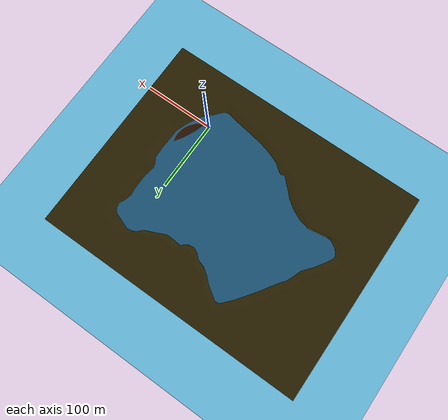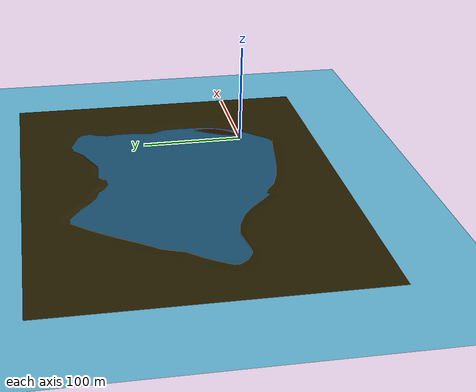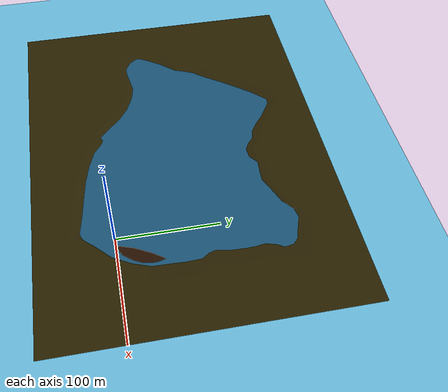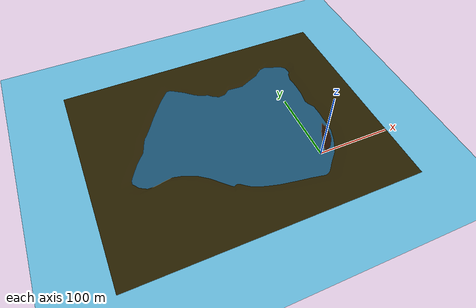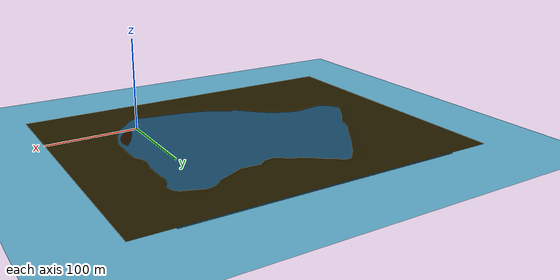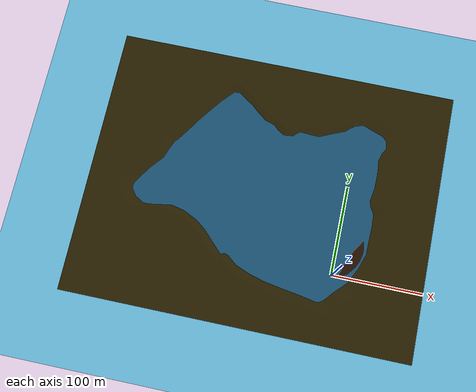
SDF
<sdf version='1.9'>
	<world name='waterworld'>
		<physics name='1ms' type='ode'>
			<max_step_size>0.001</max_step_size>
			<real_time_factor>1</real_time_factor>
			<real_time_update_rate>1000</real_time_update_rate>
		</physics>

		<plugin name='ignition::gazebo::systems::NavSat' filename='ignition-gazebo-navsat-system'/>
		<spherical_coordinates>
			<surface_model>EARTH_WGS84</surface_model>
			<world_frame_orientation>ENU</world_frame_orientation>
			<latitude_deg>46.06661</latitude_deg>,
			<longitude_deg>14.46993</longitude_deg>
			<elevation>0</elevation>
			<heading_deg>0</heading_deg>
		</spherical_coordinates>

		<plugin name='ignition::gazebo::systems::Buoyancy' filename='ignition-gazebo-buoyancy-system'>
			<graded_buoyancy>
				<default_density>1000</default_density>
				<density_change>
					<above_depth>0</above_depth>
					<density>1</density>
				</density_change>
			</graded_buoyancy>
			<enable>tuna::boat</enable>
		</plugin>

		<plugin name='ignition::gazebo::systems::Physics' filename='ignition-gazebo-physics-system'/>
		<plugin name='ignition::gazebo::systems::UserCommands' filename='ignition-gazebo-user-commands-system'/>
		<plugin name='ignition::gazebo::systems::SceneBroadcaster' filename='ignition-gazebo-scene-broadcaster-system'/>
		<plugin name="ignition::gazebo::systems::Imu" filename="libignition-gazebo-imu-system.so"></plugin>
		<gui fullscreen='false'>
			<plugin name='3D View' filename='MinimalScene'>
				<ignition-gui>
					<title>3D View</title>
					<property type='bool' key='showTitleBar'>false</property>
					<property type='string' key='state'>docked</property>
				</ignition-gui>
				<grid>false</grid>
				<engine>ogre2</engine>
				<scene>scene</scene>
				<ambient_light>0.4 0.4 0.4</ambient_light>
				<background_color>0.8 0.8 0.8</background_color>
				<camera_pose>0 -6 8 0 0.8 1.56</camera_pose>
			</plugin>

			<plugin name='Entity context menu' filename='EntityContextMenuPlugin'>
				<ignition-gui>
					<property key='state' type='string'>floating</property>
					<property key='width' type='double'>5</property>
					<property key='height' type='double'>5</property>
					<property key='showTitleBar' type='bool'>false</property>
				</ignition-gui>
			</plugin>

			<plugin name='Scene Manager' filename='GzSceneManager'>
				<ignition-gui>
					<property key='resizable' type='bool'>false</property>
					<property key='width' type='double'>5</property>
					<property key='height' type='double'>5</property>
					<property key='state' type='string'>floating</property>
					<property key='showTitleBar' type='bool'>false</property>
				</ignition-gui>
			</plugin>

			<plugin name='Interactive view control' filename='InteractiveViewControl'>
				<ignition-gui>
					<property key='resizable' type='bool'>false</property>
					<property key='width' type='double'>5</property>
					<property key='height' type='double'>5</property>
					<property key='state' type='string'>floating</property>
					<property key='showTitleBar' type='bool'>false</property>
				</ignition-gui>
			</plugin>

			<plugin name='Camera Tracking' filename='CameraTracking'>
				<ignition-gui>
					<property key='resizable' type='bool'>false</property>
					<property key='width' type='double'>5</property>
					<property key='height' type='double'>5</property>
					<property key='state' type='string'>floating</property>
					<property key='showTitleBar' type='bool'>false</property>
				</ignition-gui>
			</plugin>

			<plugin name='Select Entities' filename='SelectEntities'>
				<ignition-gui>
					<property key='resizable' type='bool'>false</property>
					<property key='width' type='double'>5</property>
					<property key='height' type='double'>5</property>
					<property key='state' type='string'>floating</property>
					<property key='showTitleBar' type='bool'>false</property>
				</ignition-gui>
			</plugin>

			<plugin name='Spawn Entities' filename='Spawn'>
				<ignition-gui>
					<property key='resizable' type='bool'>false</property>
					<property key='width' type='double'>5</property>
					<property key='height' type='double'>5</property>
					<property key='state' type='string'>floating</property>
					<property key='showTitleBar' type='bool'>false</property>
				</ignition-gui>
			</plugin>

			<plugin name='World control' filename='WorldControl'>
				<ignition-gui>
					<title>World control</title>
					<property type='bool' key='showTitleBar'>false</property>
					<property type='bool' key='resizable'>false</property>
					<property type='double' key='height'>72</property>
					<property type='double' key='width'>121</property>
					<property type='double' key='z'>1</property>
					<property type='string' key='state'>floating</property>
					<anchors target='3D View'>
						<line own='left' target='left'/>
						<line own='bottom' target='bottom'/>
					</anchors>
				</ignition-gui>
				<play_pause>true</play_pause>
				<step>true</step>
				<start_paused>true</start_paused>
				<use_event>true</use_event>
			</plugin>

			<plugin name='World stats' filename='WorldStats'>
				<ignition-gui>
					<title>World stats</title>
					<property type='bool' key='showTitleBar'>false</property>
					<property type='bool' key='resizable'>false</property>
					<property type='double' key='height'>110</property>
					<property type='double' key='width'>290</property>
					<property type='double' key='z'>1</property>
					<property type='string' key='state'>floating</property>
					<anchors target='3D View'>
						<line own='right' target='right'/>
						<line own='bottom' target='bottom'/>
					</anchors>
				</ignition-gui>
				<sim_time>true</sim_time>
				<real_time>true</real_time>
				<real_time_factor>true</real_time_factor>
				<iterations>true</iterations>
			</plugin>

			<plugin name='Transform control' filename='TransformControl'>
				<ignition-gui>
					<property key='resizable' type='bool'>false</property>
					<property key='width' type='double'>250</property>
					<property key='height' type='double'>50</property>
					<property key='state' type='string'>floating</property>
					<property key='showTitleBar' type='bool'>false</property>
					<property key='cardBackground' type='string'>#777777</property>
				</ignition-gui>
				<legacy>false</legacy>
			</plugin>

			<plugin name='Entity tree' filename='EntityTree'>
				<ignition-gui>
					<property type='string' key='state'>docked</property>
				</ignition-gui>
			</plugin>

			<plugin name='NavSat Map' filename='NavSatMap'>
				<ignition-gui>
					<title>GNSS</title>
					<property key='state' type='string'>docked</property>
				</ignition-gui>
				<topic>/gnss/fix</topic>
				<topic_picker>true</topic_picker>
			</plugin>

			<plugin name='Grid config' filename='GridConfig'>
				<ignition-gui>
					<title>Grid Config</title>
					<grid>false</grid>
				</ignition-gui>
				<insert>
					<horizontal_cell_count>60</horizontal_cell_count>
					<vertical_cell_count>0</vertical_cell_count>
					<cell_length>5.0</cell_length>
					<pose>-90 75 0  0 0 0</pose>
					<color>1 1 1 0.7</color>
				</insert>
				<grid>false</grid>
			</plugin>

		</gui>

		<gravity>0 0 -9.81</gravity>
		<magnetic_field>6e-06 2.3e-05 -4.2e-05</magnetic_field>
		<atmosphere type='adiabatic'/>
		<scene>
			<ambient>0.4 0.4 0.4 1</ambient>
			<background>0.7 0.7 0.7 1</background>
			<sky/>
			<shadows>true</shadows>
		</scene>

		<model name='water_plane'>
			<pose>-91.7405 76.9637 0 0 0 0</pose>
			<static>true</static>
			<link name='link'>
				<visual name='water_plane'>
					<pose>0 0 0 0 -0 0</pose>
					<geometry>
						<plane>
							<size>300 300</size>
							<normal>0 0 1</normal>
						</plane>
					</geometry>
					<material>
						<ambient>0.4 0.72 0.85 0.3</ambient>
						<diffuse>0.4 0.72 0.85 0.3</diffuse>
						<specular>1 1 1 0.3</specular>
					</material>
				</visual>
				<visual name='underwater_plane'>
					<pose>0 0 0 0 -0 0</pose>
					<geometry>
						<plane>
							<size>300 300</size>
							<normal>0 0 -1</normal>
						</plane>
					</geometry>
					<material>
						<ambient>0.1, 0.32, 0.45 0.9</ambient>
						<diffuse>0.1, 0.32, 0.45 0.9</diffuse>
						<specular>1 1 1 0.9</specular>
					</material>
				</visual>
				<inertial>
					<pose>0 0 0 0 -0 0</pose>
					<mass>1</mass>
					<inertia>
						<ixx>1</ixx>
						<ixy>0</ixy>
						<ixz>0</ixz>
						<iyy>1</iyy>
						<iyz>0</iyz>
						<izz>1</izz>
					</inertia>
				</inertial>
				<enable_wind>false</enable_wind>
			</link>
			<pose>0 0 0 0 -0 0</pose>
			<self_collide>false</self_collide>
		</model>

		<model name='base'>
			<pose>0 0 0 0 0 0</pose>
			<model name='ground'>
				<pose>-91.7405 76.9637 0 0 0 0</pose>
				<link name='ground_link'>
					<inertial>
						<mass>1.1</mass>
						<pose>-0.03 0 -0.02 0 0 0</pose>
						<inertia>
							<ixx>1</ixx>
							<ixy>0</ixy>
							<ixz>0</ixz>
							<iyy>1</iyy>
							<iyz>0</iyz>
							<izz>1</izz>
						</inertia>
					</inertial>

					<visual name='ground_visual'>
						<geometry>
							<mesh>
								<uri>file://meshes/map.dae</uri>
							</mesh>
						</geometry>
					</visual>

					<collision name='Cube'>
							<pose>0.000 0.000 -10.012 0 0 0</pose>
							<geometry><box>
									<size>0.387 0.103 0.033 </size>
							</box></geometry>
							<surface><friction><ode>
									<mu>0.1</mu><mu2>0.1</mu2>
							</ode></friction></surface>
					</collision>

				</link>
			</model>
			<static>true</static>
			<self_collide>false</self_collide>
		</model>

		<model name='tuna'>
			<pose>0 0 0 0 0 0</pose>
			<model name='boat'>
				<pose>0 0 0 0 0 0</pose>
				<link name='base_link'>
					<inertial>
						<mass>1.4</mass>
						<pose>-0.02 0 -0.02 0 0 0</pose>
						<inertia>
							<ixx>0.00002</ixx>
							<ixy>0</ixy>
							<ixz>0</ixz>
							<iyy>0.00002</iyy>
							<iyz>0</iyz>
							<izz>0.00002</izz>
						</inertia>
					</inertial>
					<visual name='body_visual'>
						<geometry>
							<mesh>
								<uri>file://meshes/boat.dae</uri>
							</mesh>
						</geometry>
					</visual>

					<!-- Box colliders, because mesh colliders apparently aren't supported with buoyancy 🤡-->
					<collision name='Cube'>
							<pose>0.000 0.000 0.012 0 0 0</pose>
							<geometry><box>
									<size>0.387 0.103 0.033 </size>
							</box></geometry>
							<surface><friction><ode>
									<mu>0.1</mu><mu2>0.1</mu2>
							</ode></friction></surface>
					</collision>
					<collision name='Cube.001'>
							<pose>-0.007 0.000 0.037 0 0 0</pose>
							<geometry><box>
									<size>0.185 0.078 0.017 </size>
							</box></geometry>
							<surface><friction><ode>
									<mu>0.1</mu><mu2>0.1</mu2>
							</ode></friction></surface>
					</collision>
					<collision name='Cube.002'>
							<pose>0.012 0.000 0.053 0 0 0</pose>
							<geometry><box>
									<size>0.108 0.056 0.017 </size>
							</box></geometry>
							<surface><friction><ode>
									<mu>0.1</mu><mu2>0.1</mu2>
							</ode></friction></surface>
					</collision>
					<collision name='Cube.003'>
							<pose>0.021 0.000 0.095 0 0 0</pose>
							<geometry><box>
									<size>0.045 0.044 0.070 </size>
							</box></geometry>
							<surface><friction><ode>
									<mu>0.1</mu><mu2>0.1</mu2>
							</ode></friction></surface>
					</collision>
					<collision name='Cube.004'>
							<pose>-0.082 -0.065 -0.020 0.64 0 0</pose>
							<geometry><box>
									<size>0.112 0.043 0.009 </size>
							</box></geometry>
							<surface><friction><ode>
									<mu>0.1</mu><mu2>0.1</mu2>
							</ode></friction></surface>
					</collision>
					<collision name='Cube.005'>
							<pose>-0.224 0.000 0.012 0 0 0</pose>
							<geometry><box>
									<size>0.062 0.064 0.033 </size>
							</box></geometry>
							<surface><friction><ode>
									<mu>0.1</mu><mu2>0.1</mu2>
							</ode></friction></surface>
					</collision>
					<collision name='Cube.006'>
							<pose>0.22 0.000 0.012 0 0 0</pose>
							<geometry><box>
									<size>0.07 0.061 0.033 </size>
							</box></geometry>
							<surface><friction><ode>
									<mu>0.1</mu><mu2>0.1</mu2>
							</ode></friction></surface>
					</collision>
					<collision name='Cube.007'>
							<pose>-0.028 0.000 -0.017 0 0 0</pose>
							<geometry><box>
									<size>0.284 0.097 0.025 </size>
							</box></geometry>
							<surface><friction><ode>
									<mu>0.1</mu><mu2>0.1</mu2>
							</ode></friction></surface>
					</collision>
					<collision name='Cube.008'>
							<pose>0.142 0.000 -0.017 0 0 0</pose>
							<geometry><box>
									<size>0.056 0.083 0.025 </size>
							</box></geometry>
							<surface><friction><ode>
									<mu>0.1</mu><mu2>0.1</mu2>
							</ode></friction></surface>
					</collision>
					<collision name='Cube.009'>
							<pose>0.188 0.000 -0.013 0 0 0</pose>
							<geometry><box>
									<size>0.048 0.036 0.018 </size>
							</box></geometry>
							<surface><friction><ode>
									<mu>0.1</mu><mu2>0.1</mu2>
							</ode></friction></surface>
					</collision>
					<collision name='Cube.010'>
							<pose>-0.207 0.000 -0.016 0 0 0</pose>
							<geometry><box>
									<size>0.074 0.066 0.023 </size>
							</box></geometry>
							<surface><friction><ode>
									<mu>0.1</mu><mu2>0.1</mu2>
							</ode></friction></surface>
					</collision>
					<collision name='Cube.011'>
							<pose>-0.082 0.065 -0.020 -0.64 0 0</pose>
							<geometry><box>
									<size>0.112 0.043 0.009 </size>
							</box></geometry>
							<surface><friction><ode>
									<mu>0.1</mu><mu2>0.1</mu2>
							</ode></friction></surface>
					</collision>

					<sensor name="imu_sensor" type="imu">
						<always_on>1</always_on>
						<update_rate>25</update_rate>
						<visualize>true</visualize>
						<topic>imu</topic>
						<ignition_frame_id>imu</ignition_frame_id>
					</sensor>

					<sensor name='gnss_sensor' type='navsat'>
						<always_on>true</always_on>
						<update_rate>5</update_rate>
						<topic>gnss/fix</topic>
						<gps>
							<position_sensing>
							<horizontal>
								<noise type="gaussian">
									<mean>0.00001</mean>   <!-- Adjust the mean value as desired -->
									<stddev>0.0000002</stddev>   <!-- Square root of the latitude/longitude variance -->
								</noise>
							</horizontal>
							<vertical>
								<noise type="gaussian">
								<mean>0</mean>   <!-- Adjust the mean value as desired -->
								<stddev>0.000001</stddev>   <!-- Square root of the altitude variance -->
								</noise>
							</vertical>
							</position_sensing>
						</gps>
						<ignition_frame_id>gps</ignition_frame_id>
					</sensor>

				</link>

				<plugin name='ignition::gazebo::systems::Hydrodynamics' filename='ignition-gazebo-hydrodynamics-system'>
					<link_name>base_link</link_name>
					<xDotU>-0.00001</xDotU>
					<yDotV>-0.00001</yDotV>
					<zDotW>-0.00001</zDotW>

					<kDotP>-0.00001</kDotP>
					<mDotQ>-0.00001</mDotQ>
					<nDotR>-0.00001</nDotR>

					<xUU>-4.5</xUU>
					<xU>-0.001</xU>
					<yVV>-6.5</yVV>
					<yV>-0.001</yV>
					<zWW>-30.0</zWW>
					<zW>0</zW>

					<kPP>-0.01</kPP>
					<kP>0</kP>
					<mQQ>-2.4</mQQ>
					<mQ>0</mQ>
					<nRR>-0.13</nRR>
					<nR>0</nR>

					<default_current>0 0 0</default_current>

				</plugin>

				<link name="prop_left">
					<pose>-0.14 -0.018 -0.043 0 -0.05 0</pose>
					<inertial>
						<mass>0.01</mass>
						<inertia>
							<ixx>0.019</ixx>
							<ixy>0</ixy>
							<ixz>0</ixz>
							<iyy>0.019</iyy>
							<iyz>0</iyz>
							<izz>0.019</izz>
						</inertia>
					</inertial>
					<visual name='body_visual'>
						<geometry><mesh>
								<uri>file://meshes/prop_left.dae</uri>
						</mesh></geometry>
					</visual>
				</link>

				<link name="prop_right">
					<pose>-0.14 0.018 -0.043 0 -0.05 0</pose>
					<inertial>
						<mass>0.01</mass>
						<inertia>
							<ixx>0.019</ixx>
							<ixy>0</ixy>
							<ixz>0</ixz>
							<iyy>0.019</iyy>
							<iyz>0</iyz>
							<izz>0.019</izz>
						</inertia>
					</inertial>
					<visual name='body_visual'>
						<geometry><mesh>
								<uri>file://meshes/prop_right.dae</uri>
						</mesh></geometry>
					</visual>
				</link>

				<joint name="base_to_prop_right" type="revolute">
					<parent>base_link</parent>
					<child>prop_right</child>
					<axis>
						<xyz>1 0 0</xyz>
						<limit>
							<lower>-1000000000000</lower>
							<upper>1000000000000</upper>
							<effort>inf</effort>
							<velocity>inf</velocity>
							<stiffness>100000000</stiffness>
							<dissipation>1</dissipation>
						</limit>
						<dynamics>
							<spring_reference>0</spring_reference>
							<spring_stiffness>0</spring_stiffness>
							<damping>0</damping>
							<friction>0</friction>
						</dynamics>
					</axis>
				</joint>

				<joint name="base_to_prop_left" type="revolute">
					<parent>base_link</parent>
					<child>prop_left</child>
					<axis>
						<xyz>1 0 0</xyz>
						<limit>
							<lower>-1000000000000</lower>
							<upper>1000000000000</upper>
							<effort>inf</effort>
							<velocity>inf</velocity>
							<stiffness>100000000</stiffness>
							<dissipation>1</dissipation>
						</limit>
						<dynamics>
							<spring_reference>0</spring_reference>
							<spring_stiffness>0</spring_stiffness>
							<damping>0</damping>
							<friction>0</friction>
						</dynamics>
					</axis>
				</joint>

				<plugin name='ignition::gazebo::systems::Thruster' filename='ignition-gazebo-thruster-system'>
					<joint_name>base_to_prop_left</joint_name>
					<fluid_density>1000</fluid_density>
					<propeller_diameter>0.025</propeller_diameter>
					<p_gain>0.0</p_gain>
				</plugin>

				<plugin name='ignition::gazebo::systems::Thruster' filename='ignition-gazebo-thruster-system'>
					<joint_name>base_to_prop_right</joint_name>
					<fluid_density>1000</fluid_density>
					<propeller_diameter>0.025</propeller_diameter>
					<p_gain>0.0</p_gain>
				</plugin>

				<plugin name='ignition::gazebo::systems::LinearBatteryPlugin' filename='ignition-gazebo-linearbatteryplugin-system'>
					<battery_name>battery</battery_name>
					<voltage>12.5</voltage>
					<open_circuit_voltage_constant_coef>4.2</open_circuit_voltage_constant_coef>
					<open_circuit_voltage_linear_coef>-2.0</open_circuit_voltage_linear_coef>
					<initial_charge>2.1</initial_charge>
					<capacity>2.2</capacity>
					<resistance>0.04</resistance>
					<smooth_current_tau>2.0</smooth_current_tau>
					<enable_recharge>true</enable_recharge>
					<charging_time>3.0</charging_time>
					<soc_threshold>0.51</soc_threshold>
					<power_load>1.2</power_load>
					<start_on_motion>true</start_on_motion>
				</plugin>

			</model>
			<static>false</static>
			<self_collide>false</self_collide>
		</model>

		<light name='sun' type='directional'>
			<pose>0 0 10 0 -0 0</pose>
			<cast_shadows>true</cast_shadows>
			<intensity>1</intensity>
			<direction>-0.5 0.1 -0.9</direction>
			<diffuse>1 1 1 1</diffuse>
			<specular>0.5 0.5 0.5 1</specular>
			<attenuation>
				<range>1000</range>
				<linear>0.01</linear>
				<constant>0.90000000000000002</constant>
				<quadratic>0.001</quadratic>
			</attenuation>
			<spot>
				<inner_angle>0</inner_angle>
				<outer_angle>0</outer_angle>
				<falloff>0</falloff>
			</spot>
		</light>
	</world>
</sdf>
